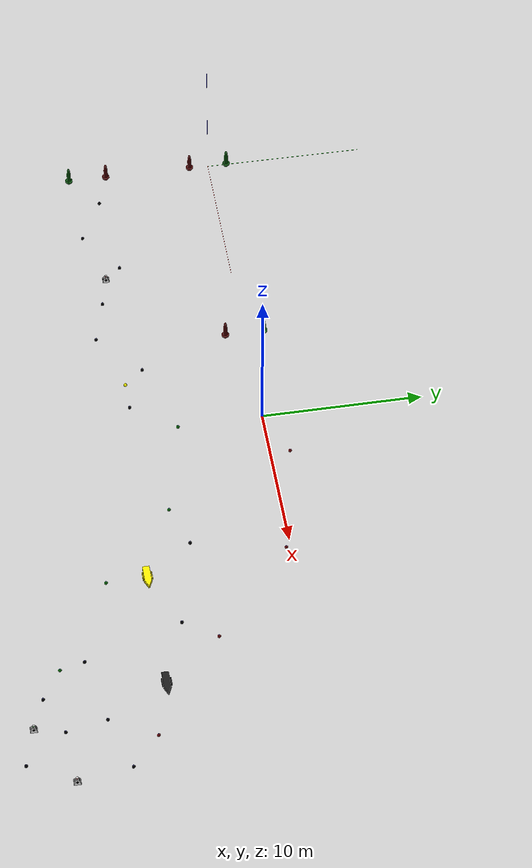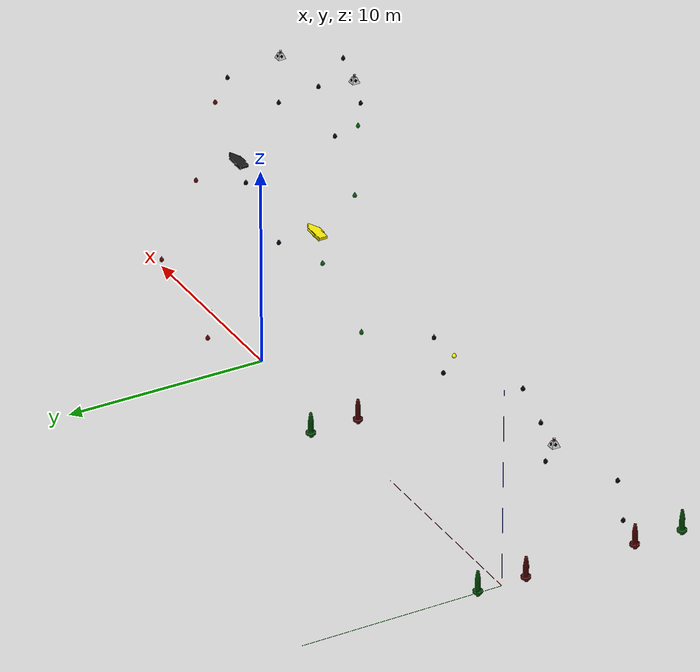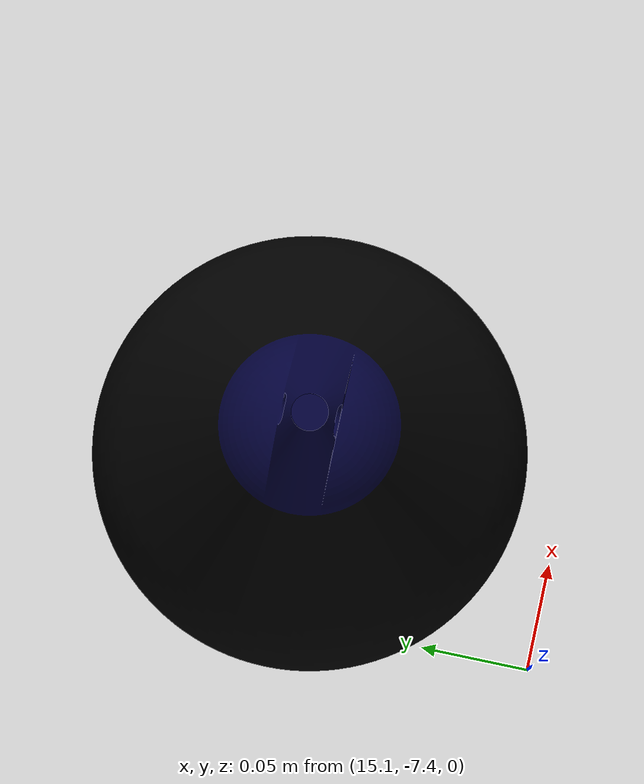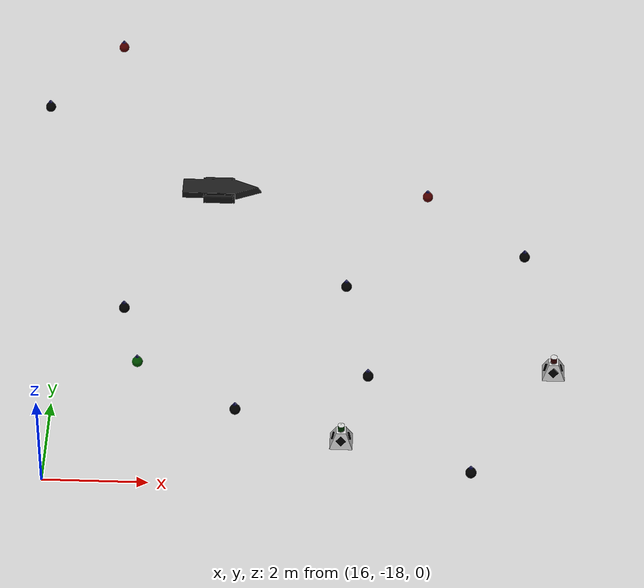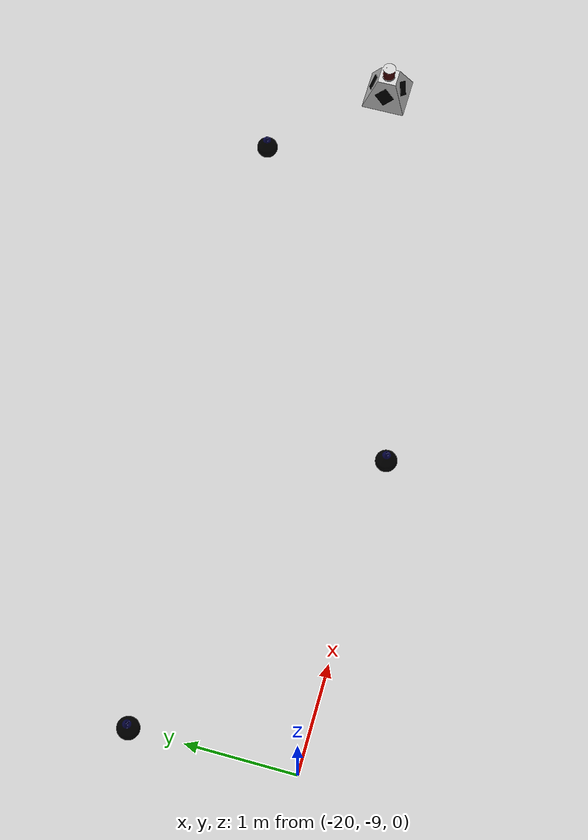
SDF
<sdf version="1.6">
 <world name="aquatonomous_course">
  <physics name="2ms" type="ode">
   <max_step_size>0.002</max_step_size>
   <real_time_factor>1.0</real_time_factor>
  </physics>
  <plugin filename="gz-sim-physics-system" name="gz::sim::systems::Physics"/>
  <plugin filename="gz-sim-sensors-system" name="gz::sim::systems::Sensors">
   <render_engine>ogre2</render_engine>
   <background_color>0.8 0.8 0.8</background_color>
  </plugin>
  <plugin filename="gz-sim-scene-broadcaster-system" name="gz::sim::systems::SceneBroadcaster"/>
  <plugin filename="gz-sim-user-commands-system" name="gz::sim::systems::UserCommands"/>
  <plugin filename="gz-sim-imu-system" name="gz::sim::systems::Imu"/>
  <scene><ambient>1.0 1.0 1.0</ambient><background>0.8 0.8 0.8</background></scene>
  <light type="directional" name="sun">
   <cast_shadows>false</cast_shadows>
   <pose>0 0 10 0 0 0</pose>
   <diffuse>0.8 0.8 0.8 1</diffuse>
   <specular>0.6 0.6 0.6 1</specular>
   <direction>-0.5 0.1 -0.9</direction>
  </light>
  <model name="axes">
   <pose>-22.192 0 0 0 0 0</pose>
   <static>1</static>
   <link name="link">
    <visual name="r">
     <cast_shadows>0</cast_shadows>
     <pose>5 0 0.1 0 0 0</pose>
     <geometry><box><size>10 0.01 0.01</size></box></geometry>
     <material><ambient>1 0 0 1</ambient><diffuse>1 0 0 1</diffuse><emissive>1 0 0 1</emissive></material>
    </visual>
    <visual name="g">
     <cast_shadows>0</cast_shadows>
     <pose>0 5 0.1 0 0 0</pose>
     <geometry><box><size>0.01 10 0.01</size></box></geometry>
     <material><ambient>0 1 0 1</ambient><diffuse>0 1 0 1</diffuse><emissive>0 1 0 1</emissive></material>
    </visual>
    <visual name="b">
     <cast_shadows>0</cast_shadows>
     <pose>0 0 5.1 0 0 0</pose>
     <geometry><box><size>0.01 0.01 10</size></box></geometry>
     <material><ambient>0 0 1 1</ambient><diffuse>0 0 1 1</diffuse><emissive>0 0 1 1</emissive></material>
    </visual>
   </link>
  </model>
  <include><name>RedSurMark_2</name><pose>-22.192 -1.22 0 0 0 0</pose><uri>model://RedSurMark</uri></include>
  <include><name>GreenSurMark_6</name><pose>-22.192 1.22 0 0 0 0</pose><uri>model://GreenSurMark</uri></include>
  <include><name>RedSurMark_3</name><pose>-6.952 -1.22 0 0 0 0</pose><uri>model://RedSurMark</uri></include>
  <include><name>GreenSurMark_7</name><pose>-6.952 1.22 0 0 0 0</pose><uri>model://GreenSurMark</uri></include>
  <include><name>RedSurMark_4</name><pose>-22.192 -6.78 0 0 0 0</pose><uri>model://RedSurMark</uri></include>
  <include>
   <name>GreenSurMark_8</name>
   <pose>-22.192 -9.22 0 0 0 0</pose>
   <uri>model://GreenSurMark</uri>
  </include>
  <include>
   <name>ColourIndicatorRed_9</name>
   <pose>-13.048 -8 0 0 0 0</pose>
   <uri>model://ColourIndicatorRed</uri>
  </include>
  <include>
   <name>YellowRopehold_0</name>
   <pose>-3.904 -8 0 0 0 0</pose>
   <uri>model://YellowRopehold</uri>
  </include>
  <include><name>BlackRopehold_24</name><pose>-20 -7.5 0 0 0 0</pose><uri>model://BlackRopehold</uri></include>
  <include><name>BlackRopehold_25</name><pose>-17 -9 0 0 0 0</pose><uri>model://BlackRopehold</uri></include>
  <include><name>BlackRopehold_26</name><pose>-14 -7 0 0 0 0</pose><uri>model://BlackRopehold</uri></include>
  <include><name>BlackRopehold_27</name><pose>-11 -8.5 0 0 0 0</pose><uri>model://BlackRopehold</uri></include>
  <include><name>BlackRopehold_28</name><pose>-8 -9.3 0 0 0 0</pose><uri>model://BlackRopehold</uri></include>
  <include><name>BlackRopehold_29</name><pose>-5 -6.8 0 0 0 0</pose><uri>model://BlackRopehold</uri></include>
  <include><name>BlackRopehold_30</name><pose>-2 -8 0 0 0 0</pose><uri>model://BlackRopehold</uri></include>
  <include><name>RedRopehold_6</name><pose>3.048 1.22 0 0 0 0</pose><uri>model://RedRopehold</uri></include>
  <include><name>RedRopehold_7</name><pose>10.548 -0.28 0 0 0 0</pose><uri>model://RedRopehold</uri></include>
  <include><name>RedRopehold_8</name><pose>16.548 -5.28 0 0 0 0</pose><uri>model://RedRopehold</uri></include>
  <include><name>RedRopehold_9</name><pose>23.048 -9.78 0 0 0 0</pose><uri>model://RedRopehold</uri></include>
  <include>
   <name>GreenRopehold_1</name>
   <pose>0.048 -5.28 0 0 0 0</pose>
   <uri>model://GreenRopehold</uri>
  </include>
  <include>
   <name>GreenRopehold_2</name>
   <pose>6.548 -6.78 0 0 0 0</pose>
   <uri>model://GreenRopehold</uri>
  </include>
  <include>
   <name>GreenRopehold_3</name>
   <pose>11.548 -11.28 0 0 0 0</pose>
   <uri>model://GreenRopehold</uri>
  </include>
  <include>
   <name>GreenRopehold_4</name>
   <pose>17.548 -14.78 0 0 0 0</pose>
   <uri>model://GreenRopehold</uri>
  </include>
  <include><name>BlackRopehold_10</name><pose>5.048 0 0 0 0 0</pose><uri>model://BlackRopehold</uri></include>
  <include>
   <name>BlackRopehold_11</name>
   <pose>9.298 -5.91 0 0 0 0</pose>
   <uri>model://BlackRopehold</uri>
  </include>
  <include>
   <name>BlackRopehold_12</name>
   <pose>15.178 -7.28 0 0 0 0</pose>
   <uri>model://BlackRopehold</uri>
  </include>
  <include>
   <name>BlackRopehold_21</name>
   <pose>17.178 -13.28 0 0 0 0</pose>
   <uri>model://BlackRopehold</uri>
  </include>
  <include>
   <name>BlackRopehold_13</name>
   <pose>21.5 -12.5 0 0 0 0</pose>
   <uri>model://BlackRopehold</uri>
  </include>
  <include><name>BlackRopehold_14</name><pose>25 -11.5 0 0 0 0</pose><uri>model://BlackRopehold</uri></include>
  <include><name>BlackRopehold_15</name><pose>22 -15 0 0 0 0</pose><uri>model://BlackRopehold</uri></include>
  <include><name>BlackRopehold_18</name><pose>19.5 -16 0 0 0 0</pose><uri>model://BlackRopehold</uri></include>
  <include><name>BlackRopehold_20</name><pose>24 -17.5 0 0 0 0</pose><uri>model://BlackRopehold</uri></include>
  <include>
   <name>ColourIndicatorRed_8</name>
   <pose>25.548 -14.78 0 0 0 0</pose>
   <uri>model://ColourIndicatorRed</uri>
  </include>
  <include>
   <name>ColourIndicatorGreen_5</name>
   <pose>21.548 -16.78 0 0 0 0</pose>
   <uri>model://ColourIndicatorGreen</uri>
  </include>
  <include>
   <name>aqua_t4_yellow</name>
   <pose>10 -10 0 -1.5708 0 0</pose>
   <uri>model://aqua_t4_yellow</uri>
  </include>
  <include><name>aqua_t4_black</name><pose>18 -10 0 -1.5708 0 0</pose><uri>model://aqua_t4_black</uri></include>
 </world>
</sdf>

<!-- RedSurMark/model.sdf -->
<sdf version='1.6'>
  <model name='Red Surmark Buoy'>
    <static>false</static>
    <plugin
        filename="gz-waves1-hydrodynamics-system"
        name="gz::sim::systems::Hydrodynamics">
    </plugin>
    <link name="base_link">
      <visual name="visual">
        <pose>0 0 0 0 0 0</pose>
        <geometry>
          <mesh>
            <uri>model://RedSurMark/meshes/RedSurmark.dae</uri>
            <scale>0.001 0.001 0.001</scale>
          </mesh>
        </geometry>
      </visual>
      <collision name="collision">
        <pose>0 0 0 0 0 0</pose>
        <geometry>
          <sphere>
            <radius>0.25</radius>
          </sphere>
        </geometry>
      </collision>
      <inertial>
        <pose>0 0 0 0 0 0</pose>
        <mass>50</mass>
        <inertia>
          <ixx>0.1636</ixx>
          <ixy>0.0</ixy>
          <ixz>0.0</ixz>
          <iyy>0.1636</iyy>
          <iyz>0.0</iyz>
          <izz>0.1636</izz>
        </inertia>
      </inertial>
    </link>
  </model>
</sdf>

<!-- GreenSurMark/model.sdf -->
<sdf version='1.6'>
  <model name='Green Surmark Buoy'>
    <static>false</static>
    <plugin
        filename="gz-waves1-hydrodynamics-system"
        name="gz::sim::systems::Hydrodynamics">
    </plugin>
    <link name="base_link">
      <visual name="visual">
        <pose>0 0 0 0 0 0</pose>
        <geometry>
          <mesh>
            <uri>model://GreenSurMark/meshes/GreenSurmark.dae</uri>
            <scale>0.001 0.001 0.001</scale>
          </mesh>
        </geometry>
      </visual>
      <collision name="collision">
        <pose>0 0 0 0 0 0</pose>
        <geometry>
          <sphere>
            <radius>0.25</radius>
          </sphere>
        </geometry>
      </collision>
      <inertial>
        <pose>0 0 0 0 0 0</pose>
        <mass>50</mass>
        <inertia>
          <ixx>0.1636</ixx>
          <ixy>0.0</ixy>
          <ixz>0.0</ixz>
          <iyy>0.1636</iyy>
          <iyz>0.0</iyz>
          <izz>0.1636</izz>
        </inertia>
      </inertial>
    </link>
  </model>
</sdf>

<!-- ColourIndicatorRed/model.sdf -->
<sdf version='1.6'>
  <model name='Red Colour Indicator'>
    <static>false</static>
    <plugin
        filename="gz-waves1-hydrodynamics-system"
        name="gz::sim::systems::Hydrodynamics">
    </plugin>
    <link name="base_link">
      <visual name="visual">
        <pose>0 0 0 0 0 0</pose>
        <geometry>
          <mesh>
            <uri>model://ColourIndicatorRed/meshes/ColourIndicatorRed.dae</uri>
            <scale>0.001 0.001 0.001</scale>
          </mesh>
        </geometry>
      </visual>
      <collision name="collision">
        <pose>0 0 0 0 0 0</pose>
        <geometry>
          <sphere>
            <radius>0.25</radius>
          </sphere>
        </geometry>
      </collision>
      <inertial>
        <pose>0 0 0 0 0 0</pose>
        <mass>20</mass>
        <inertia>
          <ixx>0.1636</ixx>
          <ixy>0.0</ixy>
          <ixz>0.0</ixz>
          <iyy>0.1636</iyy>
          <iyz>0.0</iyz>
          <izz>0.1636</izz>
        </inertia>
      </inertial>
    </link>
  </model>
</sdf>

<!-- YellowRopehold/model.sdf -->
<sdf version='1.6'>
  <model name='Yellow Ropehold Buoy'>
    <static>false</static>
    <plugin
        filename="gz-waves1-hydrodynamics-system"
        name="gz::sim::systems::Hydrodynamics">
    </plugin>
    <link name="base_link">
      <visual name="visual">
        <pose>0 0 0 0 0 0</pose>
        <geometry>
          <mesh>
            <uri>model://RedRopehold/meshes/RedRopehold.dae</uri>
            <scale>0.001 0.001 0.001</scale>
          </mesh>
        </geometry>
        <material>
          <ambient>0.9 0.9 0 1</ambient>
          <diffuse>1 1 0 1</diffuse>
          <specular>0.3 0.3 0.2 1</specular>
          <emissive>0.15 0.15 0 1</emissive>
        </material>
      </visual>
      <collision name="collision">
        <pose>0 0 0 0 0 0</pose>
        <geometry>
          <sphere>
            <radius>0.25</radius>
          </sphere>
        </geometry>
      </collision>
      <inertial>
        <pose>0 0 0 0 0 0</pose>
        <mass>20</mass>
        <inertia>
          <ixx>0.1636</ixx>
          <ixy>0.0</ixy>
          <ixz>0.0</ixz>
          <iyy>0.1636</iyy>
          <iyz>0.0</iyz>
          <izz>0.1636</izz>
        </inertia>
      </inertial>
    </link>
  </model>
</sdf>

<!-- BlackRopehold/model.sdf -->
<sdf version='1.6'>
  <model name='Black Ropehold Buoy'>
    <static>false</static>
    <plugin
        filename="gz-waves1-hydrodynamics-system"
        name="gz::sim::systems::Hydrodynamics">
    </plugin>
    <link name="base_link">
      <visual name="visual">
        <pose>0 0 0 0 0 0</pose>
        <geometry>
          <mesh>
            <uri>model://BlackRopehold/meshes/BlackRopehold.dae</uri>
            <scale>0.001 0.001 0.001</scale>
          </mesh>
        </geometry>
      </visual>
      <collision name="collision">
        <pose>0 0 0 0 0 0</pose>
        <geometry>
          <sphere>
            <radius>0.25</radius>
          </sphere>
        </geometry>
      </collision>
      <inertial>
        <pose>0 0 0 0 0 0</pose>
        <mass>20</mass>
        <inertia>
          <ixx>0.1636</ixx>
          <ixy>0.0</ixy>
          <ixz>0.0</ixz>
          <iyy>0.1636</iyy>
          <iyz>0.0</iyz>
          <izz>0.1636</izz>
        </inertia>
      </inertial>
    </link>
  </model>
</sdf>

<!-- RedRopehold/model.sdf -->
<sdf version='1.6'>
  <model name='Red Ropehold Buoy'>
    <static>false</static>
    <plugin
        filename="gz-waves1-hydrodynamics-system"
        name="gz::sim::systems::Hydrodynamics">
    </plugin>
    <link name="base_link">
      <visual name="visual">
        <pose>0 0 0 0 0 0</pose>
        <geometry>
          <mesh>
            <uri>model://RedRopehold/meshes/RedRopehold.dae</uri>
            <scale>0.001 0.001 0.001</scale>
          </mesh>
        </geometry>
      </visual>
      <collision name="collision">
        <pose>0 0 0 0 0 0</pose>
        <geometry>
          <sphere>
            <radius>0.25</radius>
          </sphere>
        </geometry>
      </collision>
      <inertial>
        <pose>0 0 0 0 0 0</pose>
        <mass>20</mass>
        <inertia>
          <ixx>0.1636</ixx>
          <ixy>0.0</ixy>
          <ixz>0.0</ixz>
          <iyy>0.1636</iyy>
          <iyz>0.0</iyz>
          <izz>0.1636</izz>
        </inertia>
      </inertial>
    </link>
  </model>
</sdf>

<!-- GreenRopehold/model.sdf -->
<sdf version='1.6'>
  <model name='Green Ropehold Buoy'>
    <static>false</static>
    <plugin
        filename="gz-waves1-hydrodynamics-system"
        name="gz::sim::systems::Hydrodynamics">
    </plugin>
    <link name="base_link">
      <visual name="visual">
        <pose>0 0 0 0 0 0</pose>
        <geometry>
          <mesh>
            <uri>model://GreenRopehold/meshes/GreenRopehold.dae</uri>
            <scale>0.001 0.001 0.001</scale>
          </mesh>
        </geometry>
      </visual>
      <collision name="collision">
        <pose>0 0 0 0 0 0</pose>
        <geometry>
          <sphere>
            <radius>0.25</radius>
          </sphere>
        </geometry>
      </collision>
      <inertial>
        <pose>0 0 0 0 0 0</pose>
        <mass>20</mass>
        <inertia>
          <ixx>0.1636</ixx>
          <ixy>0.0</ixy>
          <ixz>0.0</ixz>
          <iyy>0.1636</iyy>
          <iyz>0.0</iyz>
          <izz>0.1636</izz>
        </inertia>
      </inertial>
    </link>
  </model>
</sdf>

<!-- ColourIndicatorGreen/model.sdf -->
<sdf version='1.6'>
  <model name='Green Colour Indicator'>
    <static>false</static>
    <plugin
        filename="gz-waves1-hydrodynamics-system"
        name="gz::sim::systems::Hydrodynamics">
    </plugin>
    <link name="base_link">
      <visual name="visual">
        <pose>0 0 0 0 0 0</pose>
        <geometry>
          <mesh>
            <uri>model://ColourIndicatorGreen/meshes/ColourIndicatorGreen.dae</uri>
            <scale>0.001 0.001 0.001</scale>
          </mesh>
        </geometry>
      </visual>
      <collision name="collision">
        <pose>0 0 0 0 0 0</pose>
        <geometry>
          <sphere>
            <radius>0.25</radius>
          </sphere>
        </geometry>
      </collision>
      <inertial>
        <pose>0 0 0 0 0 0</pose>
        <mass>20</mass>
        <inertia>
          <ixx>0.1636</ixx>
          <ixy>0.0</ixy>
          <ixz>0.0</ixz>
          <iyy>0.1636</iyy>
          <iyz>0.0</iyz>
          <izz>0.1636</izz>
        </inertia>
      </inertial>
    </link>
  </model>
</sdf>

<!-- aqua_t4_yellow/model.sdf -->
<sdf version='1.6'>
  <model name='aqua_t4_yellow'>
    <static>false</static>
    <plugin filename="gz-waves1-hydrodynamics-system" name="gz::sim::systems::Hydrodynamics"/>
    <link name='link'>
      <visual name='visual'>
        <geometry>
          <mesh>
            <uri>model://aqua_t4_yellow/meshes/AQUA_T4_ASSY_MED.STL</uri>
            <scale>0.001 0.001 0.001</scale>
          </mesh>
        </geometry>
        <material>
          <ambient>0.9 0.85 0 1</ambient>
          <diffuse>0.95 0.9 0 1</diffuse>
          <specular>0.2 0.2 0.2 1</specular>
        </material>
      </visual>
      <collision name='collision'>
        <geometry><box><size>1.5 0.5 0.4</size></box></geometry>
      </collision>
      <inertial>
        <mass>100</mass>
        <inertia>
          <ixx>3.42</ixx><ixy>0</ixy><ixz>0</ixz>
          <iyy>20.08</iyy><iyz>0</iyz>
          <izz>20.83</izz>
        </inertia>
      </inertial>
    </link>
  </model>
</sdf>

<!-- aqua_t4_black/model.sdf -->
<sdf version='1.6'>
  <model name='aqua_t4_black'>
    <static>false</static>
    <plugin filename="gz-waves1-hydrodynamics-system" name="gz::sim::systems::Hydrodynamics"/>
    <link name='link'>
      <visual name='visual'>
        <geometry>
          <mesh>
            <uri>model://aqua_t4_black/meshes/AQUA_T4_ASSY_WATER.STL</uri>
            <scale>0.001 0.001 0.001</scale>
          </mesh>
        </geometry>
        <material>
          <ambient>0.05 0.05 0.05 1</ambient>
          <diffuse>0.1 0.1 0.1 1</diffuse>
          <specular>0.1 0.1 0.1 1</specular>
        </material>
      </visual>
      <collision name='collision'>
        <geometry><box><size>1.5 0.5 0.4</size></box></geometry>
      </collision>
      <inertial>
        <mass>100</mass>
        <inertia>
          <ixx>3.42</ixx><ixy>0</ixy><ixz>0</ixz>
          <iyy>20.08</iyy><iyz>0</iyz>
          <izz>20.83</izz>
        </inertia>
      </inertial>
    </link>
  </model>
</sdf>
